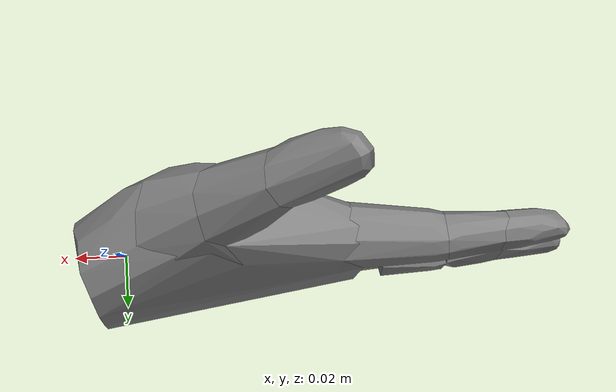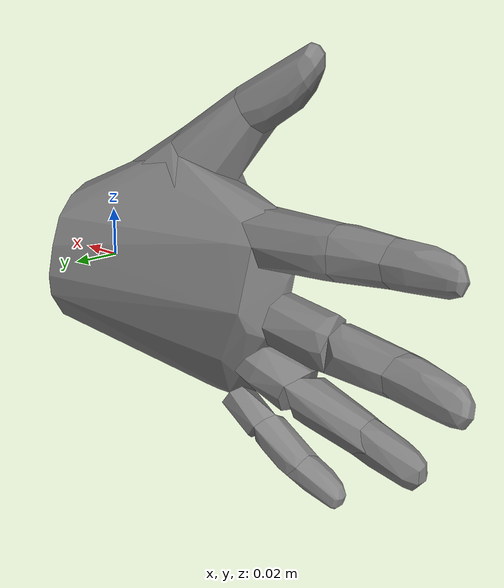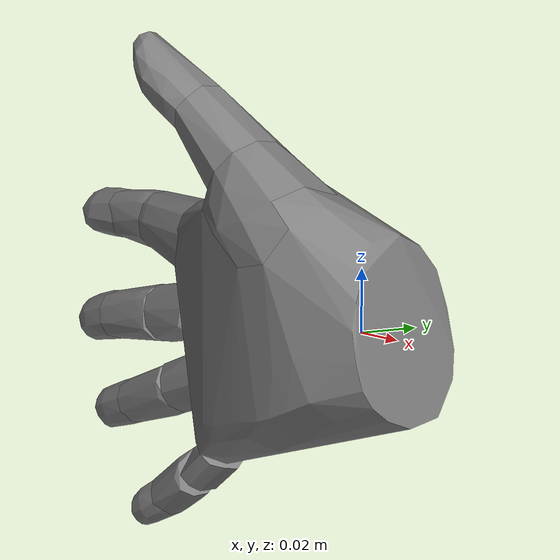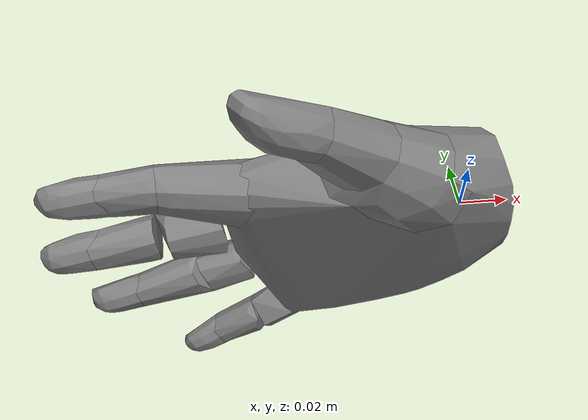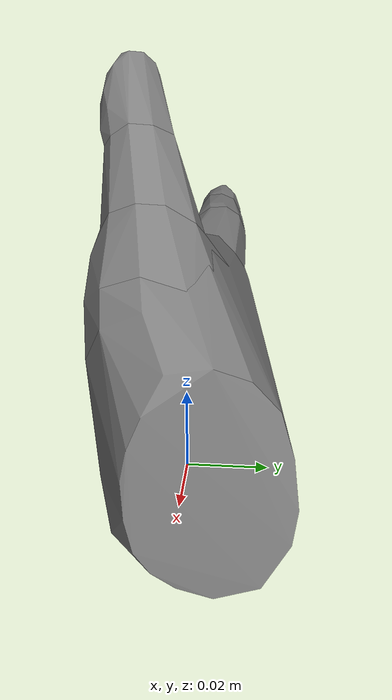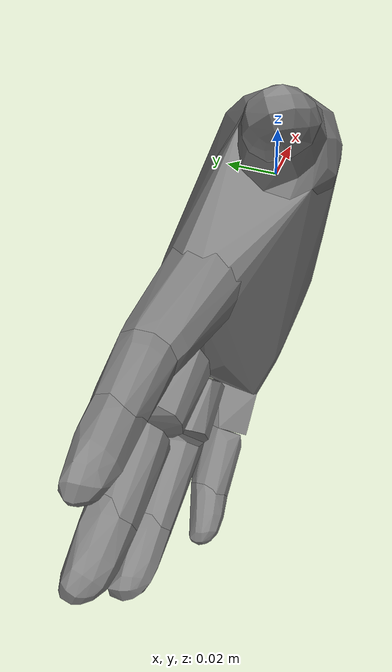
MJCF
<mujoco model="mano">
  <compiler angle="radian" meshdir="meshes" autolimits="true"/>

  <option cone="elliptic" impratio="10"/>
   <option impratio="10" integrator="implicitfast" cone="elliptic" noslip_stepations="2" >
      <flag gravity="disable" nativeccd="enable"/>
   </option>

  <default>
    <default class="right_hand">
      <joint damping="0.05" armature="0.0002" frictionloss="0.01"/>
      <position kp="5"/>
      <default class="index1y">
        <position ctrlrange="-0.349066 0.349066"/>
      </default>
      <default class="finger1x">
        <position ctrlrange="-0.174533 1.5708"/>
      </default>
      <default class="finger2">
        <position ctrlrange="0 1.74533"/>
      </default>
      <default class="finger3">
        <position ctrlrange="0 1.74533"/>
      </default>
      <default class="middle1y">
        <position ctrlrange="-0.523599 0.349066"/>
      </default>
      <default class="pinky1y">
        <position ctrlrange="-0.698132 0.349066"/>
      </default>
      <default class="ring1y">
        <position ctrlrange="-0.523599 0.349066"/>
      </default>
      <default class="thumb1y">
        <position ctrlrange="-0.174533 2.61799"/>
      </default>
      <default class="thumb1z">
        <position ctrlrange="-0.698132 0.698132"/>
      </default>

    </default>
  </default>

  <asset>
    <mesh name="palm" file="palm.stl"/>
    <mesh name="index1x" file="index1x.stl"/>
    <mesh name="index2" file="index2.stl"/>
    <mesh name="index3" file="index3.stl"/>
    <mesh name="middle1x" file="middle1x.stl"/>
    <mesh name="middle2" file="middle2.stl"/>
    <mesh name="middle3" file="middle3.stl"/>
    <mesh name="pinky1x" file="pinky1x.stl"/>
    <mesh name="pinky2" file="pinky2.stl"/>
    <mesh name="pinky3" file="pinky3.stl"/>
    <mesh name="ring1x" file="ring1x.stl"/>
    <mesh name="ring2" file="ring2.stl"/>
    <mesh name="ring3" file="ring3.stl"/>
    <mesh name="thumb1z" file="thumb1z.stl"/>
    <mesh name="thumb2" file="thumb2.stl"/>
    <mesh name="thumb3" file="thumb3.stl"/>
  </asset>

  <worldbody>
    <body name="rh_palm">
      <geom name="c_palm" type="mesh" mesh="palm"/>
      <body name="index1y" pos="-0.0880972 -0.00520036 0.020686" quat="0.0207461 -0.704984 -0.0206397 -0.708619">
        <inertial pos="0 0 0" mass="1e-3" diaginertia="1e-4 1e-4 1e-4"/>
        <joint name="j_index1y" pos="0 0 0" axis="0 1 0" range="-0.349066 0.349066" actuatorfrcrange="-100 100"/>
        <body name="index1x">
          <inertial pos="0 0 0" mass="1e-3" diaginertia="1e-4 1e-4 1e-4"/>
          <joint name="j_index1x" pos="0 0 0" axis="1 0 0" range="-0.174533 1.5708" actuatorfrcrange="-100 100"/>
          <geom name="c_index1x" quat="0.0207461 0.704984 0.0206397 0.708619" type="mesh" mesh="index1x"/>
          <body name="index2" pos="0.00238357 -0.00591432 -0.0323765">
            <inertial pos="0 0 0" mass="1e-3" diaginertia="1e-4 1e-4 1e-4"/>
            <joint name="j_index2" pos="0 0 0" axis="1 0 0" range="0 1.74533" actuatorfrcrange="-100 100"/>
            <geom name="c_index2" quat="0.0207461 0.704984 0.0206397 0.708619" type="mesh" mesh="index2"/>
            <body name="index3" pos="0 0 -0.0221942">
              <inertial pos="0 0 0" mass="1e-3" diaginertia="1e-4 1e-4 1e-4"/>
              <joint name="j_index3" pos="0 0 0" axis="1 0 0" range="0 1.74533" actuatorfrcrange="-100 100"/>
              <geom name="c_index3" quat="0.0207461 0.704984 0.0206397 0.708619" type="mesh" mesh="index3"/>
            </body>
          </body>
        </body>
      </body>
      <body name="middle1y" pos="-0.0946604 -0.00147896 -0.00335754" quat="0.0280283 -0.644307 -0.0115664 -0.764166">
        <inertial pos="0 0 0" mass="1e-3" diaginertia="1e-4 1e-4 1e-4"/>
        <joint name="j_middle1y" pos="0 0 0" axis="0 1 0" range="-0.523599 0.349066" actuatorfrcrange="-100 100"/>
        <body name="middle1x">
          <inertial pos="0 0 0" mass="1e-3" diaginertia="1e-4 1e-4 1e-4"/>
          <joint name="j_middle1x" pos="0 0 0" axis="1 0 0" range="-0.174533 1.5708" actuatorfrcrange="-100 100"/>
          <geom name="c_middle1x" quat="0.0280283 0.644307 0.0115664 0.764166" type="mesh" mesh="middle1x"/>
          <body name="middle2" pos="-0.000320716 -0.00355526 -0.0315338">
            <inertial pos="0 0 0" mass="1e-3" diaginertia="1e-4 1e-4 1e-4"/>
            <joint name="j_middle2" pos="0 0 0" axis="1 0 0" range="0 1.74533" actuatorfrcrange="-100 100"/>
            <geom name="c_middle2" quat="0.0280283 0.644307 0.0115664 0.764166" type="mesh" mesh="middle2"/>
            <body name="middle3" pos="0 0 -0.0232755">
              <inertial pos="0 0 0" mass="1e-3" diaginertia="1e-4 1e-4 1e-4"/>
              <joint name="j_middle3" pos="0 0 0" axis="1 0 0" range="0 1.74533" actuatorfrcrange="-100 100"/>
              <geom name="c_middle3" quat="0.0280283 0.644307 0.0115664 0.764166" type="mesh" mesh="middle3"/>
            </body>
          </body>
        </body>
      </body>
      <body name="pinky1y" pos="-0.068787 -0.00994033 -0.0432093" quat="0.114604 0.469585 0.0826793 0.871505">
        <inertial pos="0 0 0" mass="1e-3" diaginertia="1e-4 1e-4 1e-4"/>
        <joint name="j_pinky1y" pos="0 0 0" axis="0 1 0" range="-0.698132 0.349066" actuatorfrcrange="-100 100"/>
        <body name="pinky1x">
          <inertial pos="0 0 0" mass="1e-3" diaginertia="1e-4 1e-4 1e-4"/>
          <joint name="j_pinky1x" pos="0 0 0" axis="1 0 0" range="-0.174533 1.5708" actuatorfrcrange="-100 100"/>
          <geom name="c_pinky1x" quat="0.114604 -0.469585 -0.0826793 -0.871505" type="mesh" mesh="pinky1x"/>
          <body name="pinky2" pos="-0.000912324 -0.00112828 -0.021062">
            <inertial pos="0 0 0" mass="1e-3" diaginertia="1e-4 1e-4 1e-4"/>
            <joint name="j_pinky2" pos="0 0 0" axis="1 0 0" range="0 1.74533" actuatorfrcrange="-100 100"/>
            <geom name="c_pinky2" quat="0.114604 -0.469585 -0.0826793 -0.871505" type="mesh" mesh="pinky2"/>
            <body name="pinky3" pos="0 0 -0.0189469">
              <inertial pos="0 0 0" mass="1e-3" diaginertia="1e-4 1e-4 1e-4"/>
              <joint name="j_pinky3" pos="0 0 0" axis="1 0 0" range="0 1.74533" actuatorfrcrange="-100 100"/>
              <geom name="c_pinky3" quat="0.114604 -0.469585 -0.0826793 -0.871505" type="mesh" mesh="pinky3"/>
            </body>
          </body>
        </body>
      </body>
      <body name="ring1y" pos="-0.0817356 -0.00395742 -0.0266732" quat="0.0233679 0.585251 0.0590453 0.808362">
        <inertial pos="0 0 0" mass="1e-3" diaginertia="1e-4 1e-4 1e-4"/>
        <joint name="j_ring1y" pos="0 0 0" axis="0 1 0" range="-0.523599 0.349066" actuatorfrcrange="-100 100"/>
        <body name="ring1x">
          <inertial pos="0 0 0" mass="1e-3" diaginertia="1e-4 1e-4 1e-4"/>
          <joint name="j_ring1x" pos="0 0 0" axis="1 0 0" range="-0.174533 1.5708" actuatorfrcrange="-100 100"/>
          <geom name="c_ring1x" quat="-0.0233679 0.585251 0.0590453 0.808362" type="mesh" mesh="ring1x"/>
          <body name="ring2" pos="0.00429787 -0.00356368 -0.0282983">
            <inertial pos="0 0 0" mass="1e-3" diaginertia="1e-4 1e-4 1e-4"/>
            <joint name="j_ring2" pos="0 0 0" axis="1 0 0" range="0 1.74533" actuatorfrcrange="-100 100"/>
            <geom name="c_ring2" quat="-0.0233679 0.585251 0.0590453 0.808362" type="mesh" mesh="ring2"/>
            <body name="ring3" pos="0 0 -0.0247859">
              <inertial pos="0 0 0" mass="1e-3" diaginertia="1e-4 1e-4 1e-4"/>
              <joint name="j_ring3" pos="0 0 0" axis="1 0 0" range="0 1.74533" actuatorfrcrange="-100 100"/>
              <geom name="c_ring3" quat="-0.0233679 0.585251 0.0590453 0.808362" type="mesh" mesh="ring3"/>
            </body>
          </body>
        </body>
      </body>
      <body name="thumb1y" pos="-0.0240897 -0.0155223 0.0258128" quat="0.457776 -0.494578 -0.459441 -0.578574">
        <inertial pos="0 0 0" mass="1e-3" diaginertia="1e-4 1e-4 1e-4"/>
        <joint name="j_thumb1y" pos="0 0 0" axis="0 1 0" range="-0.174533 2.61799" actuatorfrcrange="-100 100"/>
        <body name="thumb1z">
          <inertial pos="0 0 0" mass="1e-3" diaginertia="1e-4 1e-4 1e-4"/>
          <joint name="j_thumb1z" pos="0 0 0" axis="0 0 1" range="-0.698132 0.698132" actuatorfrcrange="-100 100"/>
          <geom name="c_thumb1z" quat="0.457776 0.494578 0.459441 0.578574" type="mesh" mesh="thumb1z"/>
          <body name="thumb2" pos="0.0252649 -0.0175957 0" quat="0.574412 -0.601175 0.038173 0.554241">
            <inertial pos="0 0 0" mass="1e-3" diaginertia="1e-4 1e-4 1e-4"/>
            <joint name="j_thumb2" pos="0 0 0" axis="1 0 0" range="0 1.74533" actuatorfrcrange="-100 100"/>
            <geom name="c_thumb2" quat="0.303832 0.79185 -0.375505 0.373706" type="mesh" mesh="thumb2"/>
            <body name="thumb3" pos="0 0 -0.0270942">
              <inertial pos="0 0 0" mass="1e-3" diaginertia="1e-4 1e-4 1e-4"/>
              <joint name="j_thumb3" pos="0 0 0" axis="1 0 0" range="0 1.74533" actuatorfrcrange="-100 100"/>
              <geom name="c_thumb3" quat="0.303832 0.79185 -0.375505 0.373706" type="mesh" mesh="thumb3"/>
            </body>
          </body>
        </body>
      </body>
    </body>
  </worldbody>

  <contact>
    <exclude body1="rh_palm" body2="index1x"/>
    <exclude body1="rh_palm" body2="pinky1x"/>
    <exclude body1="rh_palm" body2="ring1x"/>
    <exclude body1="rh_palm" body2="middle1x"/>
    <exclude body1="rh_palm" body2="thumb1z"/>
    <exclude body1="rh_palm" body2="thumb2"/>
  </contact>

  <actuator>
    <position name="rh_A_index1y" joint="j_index1y" class="index1y"/>
    <position name="rh_A_index1x" joint="j_index1x" class="finger1x"/>
    <position name="rh_A_index2" joint="j_index2" class="finger2"/>
    <position name="rh_A_index3" joint="j_index3" class="finger3"/>
    <position name="rh_A_middle1y" joint="j_middle1y" class="middle1y"/>
    <position name="rh_A_middle1x" joint="j_middle1x" class="finger1x"/>
    <position name="rh_A_middle2" joint="j_middle2" class="finger2"/>
    <position name="rh_A_middle3" joint="j_middle3" class="finger3"/>
    <position name="rh_A_pinky1y" joint="j_pinky1y" class="pinky1y"/>
    <position name="rh_A_pinky1x" joint="j_pinky1x" class="finger1x"/>
    <position name="rh_A_pinky2" joint="j_pinky2" class="finger2"/>
    <position name="rh_A_pinky3" joint="j_pinky3" class="finger3"/>
    <position name="rh_A_ring1y" joint="j_ring1y" class="ring1y"/>
    <position name="rh_A_ring1x" joint="j_ring1x" class="finger1x"/>
    <position name="rh_A_ring2" joint="j_ring2" class="finger2"/>
    <position name="rh_A_ring3" joint="j_ring3" class="finger3"/>
    <position name="rh_A_thumb1y" joint="j_thumb1y" class="thumb1y"/>
    <position name="rh_A_thumb1z" joint="j_thumb1z" class="thumb1z"/>
    <position name="rh_A_thumb2" joint="j_thumb2" class="finger2"/>
    <position name="rh_A_thumb3" joint="j_thumb3" class="finger3"/>
  </actuator>
  <keyframe>
    <key qpos='0 0.689522 0.444975 0.322825 -0.205064 1.01244 0.584575 0.1745 0.3491 1.37899 0 0.270475 0.3491 1.07353 0.410075 0.340275 0.300225 0.174525 0 0'
    ctrl='0 0.689522 0.444975 0.322825 -0.205064 1.01244 0.584575 0.1745 0.3491 1.37899 0 0.270475 0.3491 1.07353 0.410075 0.340275 0.300225 0.174525 0 0'/>"
  </keyframe>
</mujoco>
